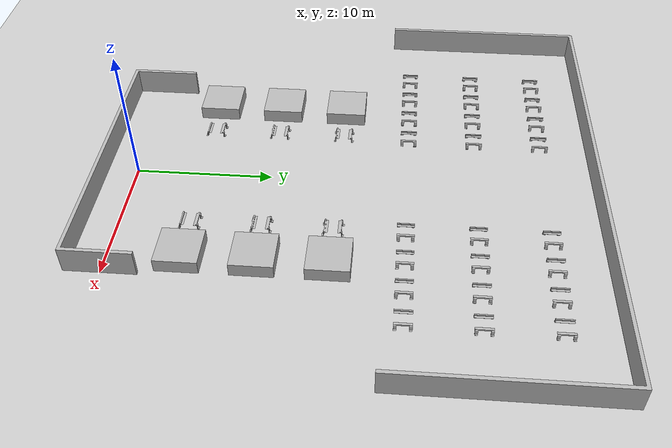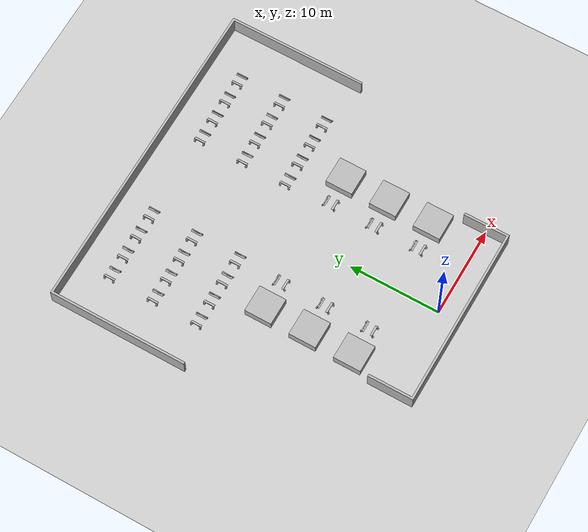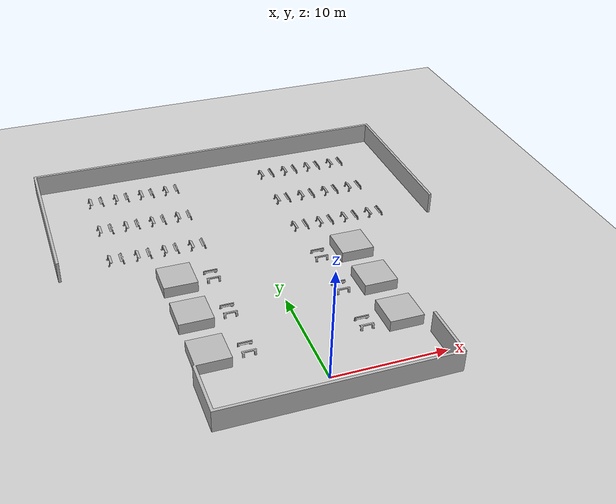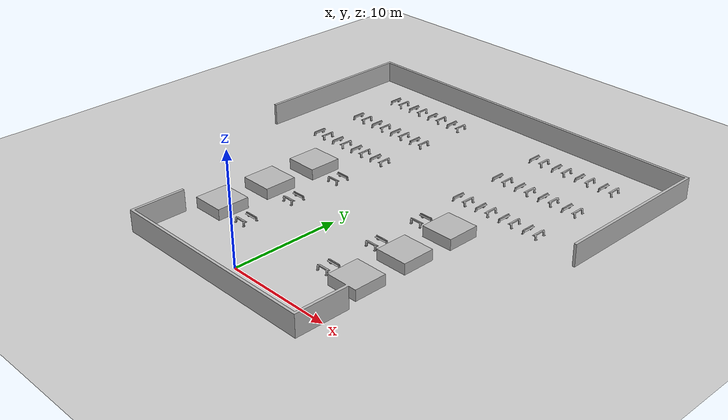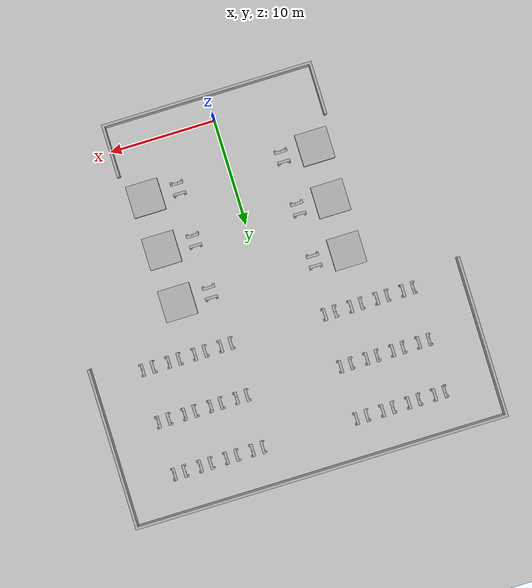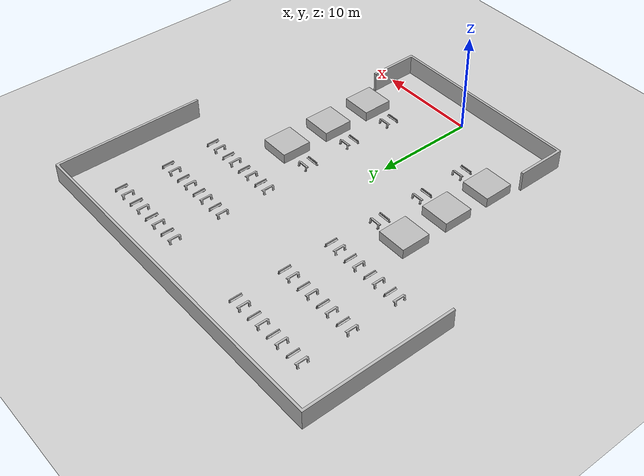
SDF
<?xml version="1.0"?>
<sdf version="1.6">
	<world name="default">
		<scene>
			<ambient>127 127 127 1</ambient>
			<background>0.5 0.5 0.5 1</background>
			<shadows>0</shadows>
		</scene>

		<include>
			<uri>model://sun</uri>
		</include>

		<include>
			<uri>model://ground_plane</uri>
		</include>

		<model name="factory">
			<static>1</static>
			<include>
				<uri>model://Factory</uri>
			</include>
			<pose>-17.95 -2.5225 0 0 0 0</pose>
		</model>

		<model name="support1">
			<include>
				<uri>model://support</uri>
			</include>
			<pose>-5 5 0 0 0 1.57 </pose>
		</model>

		<model name="support2">
			<include>
				<uri>model://support</uri>
			</include>
			<pose>-5 10 0 0 0 1.57 </pose>
		</model>

		<model name="support3">
			<include>
				<uri>model://support</uri>
			</include>
			<pose>5 5 0 0 0 1.57 </pose>
		</model>

		<model name="support4">
			<include>
				<uri>model://support</uri>
			</include>
			<pose>5 10 0 0 0 1.57 </pose>
		</model>

		<model name="support5">
			<include>
				<uri>model://support</uri>
			</include>
			<pose>-5 15 0 0 0 1.57 </pose>
		</model>

		<model name="support6">
			<include>
				<uri>model://support</uri>
			</include>
			<pose>5 15 0 0 0 1.57 </pose>
		</model>

		<model name="support7">
			<include>
				<uri>model://support</uri>
			</include>
			<pose>5 20 0 0 0 0 </pose>
		</model>

		<model name="support8">
			<include>
				<uri>model://support</uri>
			</include>
			<pose>5 25 0 0 0 0 </pose>
		</model>

		<model name="support9">
			<include>
				<uri>model://support</uri>
			</include>
			<pose>5 30 0 0 0 0 </pose>
		</model>

		<model name="support10">
			<include>
				<uri>model://support</uri>
			</include>
			<pose>-5 20 0 0 0 0 </pose>
		</model>

		<model name="suppor11">
			<include>
				<uri>model://support</uri>
			</include>
			<pose>-5 25 0 0 0 0 </pose>
		</model>

		<model name="support12">
			<include>
				<uri>model://support</uri>
			</include>
			<pose>-5 30 0 0 0 0 </pose>
		</model>
		<model name="support13">
			<include>
				<uri>model://support</uri>
			</include>
			<pose>10 20 0 0 0 0 </pose>
		</model>

		<model name="support14">
			<include>
				<uri>model://support</uri>
			</include>
			<pose>10 25 0 0 0 0 </pose>
		</model>

		<model name="support15">
			<include>
				<uri>model://support</uri>
			</include>
			<pose>10 30 0 0 0 0 </pose>
		</model>

		<model name="support16">
			<include>
				<uri>model://support</uri>
			</include>
			<pose>7.5 20 0 0 0 0 </pose>
		</model>

		<model name="support17">
			<include>
				<uri>model://support</uri>
			</include>
			<pose>7.5 25 0 0 0 0 </pose>
		</model>

		<model name="support18">
			<include>
				<uri>model://support</uri>
			</include>
			<pose>7.5 30 0 0 0 0 </pose>
		</model>

		<model name="support19">
			<include>
				<uri>model://support</uri>
			</include>
			<pose>12.5 20 0 0 0 0 </pose>
		</model>

		<model name="support20">
			<include>
				<uri>model://support</uri>
			</include>
			<pose>12.5 25 0 0 0 0 </pose>
		</model>

		<model name="support21">
			<include>
				<uri>model://support</uri>
			</include>
			<pose>12.5 30 0 0 0 0 </pose>
		</model>

		<model name="support22">
			<include>
				<uri>model://support</uri>
			</include>
			<pose>-10 20 0 0 0 0 </pose>
		</model>

		<model name="support23">
			<include>
				<uri>model://support</uri>
			</include>
			<pose>-10 25 0 0 0 0 </pose>
		</model>

		<model name="support24">
			<include>
				<uri>model://support</uri>
			</include>
			<pose>-10 30 0 0 0 0 </pose>
		</model>

		<model name="support25">
			<include>
				<uri>model://support</uri>
			</include>
			<pose>-7.5 20 0 0 0 0 </pose>
		</model>

		<model name="support26">
			<include>
				<uri>model://support</uri>
			</include>
			<pose>-7.5 25 0 0 0 0 </pose>
		</model>

		<model name="support27">
			<include>
				<uri>model://support</uri>
			</include>
			<pose>-7.5 30 0 0 0 0 </pose>
		</model>

		<model name="support28">
			<include>
				<uri>model://support</uri>
			</include>
			<pose>-12.5 20 0 0 0 0 </pose>
		</model>

		<model name="support29">
			<include>
				<uri>model://support</uri>
			</include>
			<pose>-12.5 25 0 0 0 0 </pose>
		</model>

		<model name="support30">
			<include>
				<uri>model://support</uri>
			</include>
			<pose>-12.5 30 0 0 0 0 </pose>
		</model>

	</world>
</sdf>

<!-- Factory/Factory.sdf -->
<sdf version="1.6">
  <model name="station">
    <static>1</static>
  <link name="link">
  <pose>0 0 0 0 0 0</pose>
    <inertial>
          <pose>0 0 0 0 0 0</pose>
          <mass>500</mass>
    </inertial>
    <collision name="collision">
      <pose>0 0 0 0 0 0</pose>
        <geometry>
          <mesh>
            <scale> 0.001 0.001 0.001 </scale>
            <uri>model://Factory/meshes/Factory.STL</uri>
          </mesh>
        </geometry>
    </collision>
    <visual name="visual">
      <geometry>
        <mesh>
          <scale> 0.001 0.001 0.001 </scale>
          <uri>model://Factory/meshes/Factory.STL</uri>
        </mesh>
      </geometry>
    </visual>
  </link>

  </model>
</sdf>

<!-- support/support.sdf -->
<sdf version="1.6">
  <model name="support">
    <static>1</static>
    <link name="link">
    <inertial>
          <pose>0 0 0.55 0 0 0</pose>
          <mass>0.5</mass>
          <inertia>
            <ixx>0.122</ixx>
            <ixy>0</ixy>
            <ixz>0</ixz>
            <iyy>0.082</iyy>
            <iyz>0</iyz>
            <izz>0.346</izz>
          </inertia>
       </inertial>
      <collision name="collision">
        <pose>0 0 0 0 0 0</pose>
        <geometry>
          <mesh>
            <uri>model://support/meshes/support.STL</uri>
          </mesh>
        </geometry>
      </collision>
      <visual name="visual">
        <geometry>
          <mesh>
            <uri>model://support/meshes/support.STL</uri>
          </mesh>
        </geometry>
      </visual>
    </link>
  </model>
</sdf>
